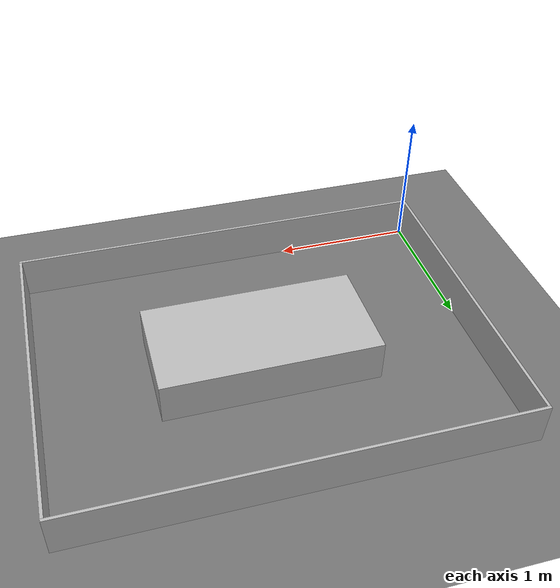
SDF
<sdf version="1.8">
 <world name="default">
  <plugin filename="gz-sim-physics-system" name="gz::sim::systems::Physics"/>
  <plugin filename="gz-sim-user-commands-system" name="gz::sim::systems::UserCommands"/>
  <plugin filename="gz-sim-scene-broadcaster-system" name="gz::sim::systems::SceneBroadcaster"/>
  <plugin filename="gz-sim-sensors-system" name="gz::sim::systems::Sensors">
   <render_engine>ogre2</render_engine>
  </plugin>
  <plugin filename="gz-sim-imu-system" name="gz::sim::systems::Imu"/>
  <scene><ambient>0.7 0.7 0.7 1</ambient><background>0.8 0.9 1.0 1</background><shadows>false</shadows></scene>
  <light type="directional" name="sun">
   <cast_shadows>false</cast_shadows>
   <pose>0 0 10 0 0 0</pose>
   <diffuse>0.6 0.6 0.6 1</diffuse>
   <specular>0 0 0 1</specular>
   <direction>-0.2 0.1 -1.0</direction>
  </light>
  <model name="ground_plane">
   <static>true</static>
   <link name="link">
    <collision name="collision">
     <geometry><plane><normal>0 0 1</normal><size>20 20</size></plane></geometry>
    </collision>
    <visual name="visual">
     <geometry><plane><normal>0 0 1</normal><size>20 20</size></plane></geometry>
     <material>
      <ambient>0.45 0.45 0.45 1</ambient>
      <diffuse>0.45 0.45 0.45 1</diffuse>
      <specular>0 0 0 1</specular>
     </material>
    </visual>
   </link>
  </model>
  <model name="wall_south">
   <static>true</static>
   <pose>1.5 -0.01 0.15 0 0 0</pose>
   <link name="link">
    <collision name="collision"><geometry><box><size>3.04 0.02 0.3</size></box></geometry></collision>
    <visual name="visual"><geometry><box><size>3.04 0.02 0.3</size></box></geometry></visual>
   </link>
  </model>
  <model name="wall_north">
   <static>true</static>
   <pose>1.5 2.26 0.15 0 0 0</pose>
   <link name="link">
    <collision name="collision"><geometry><box><size>3.04 0.02 0.3</size></box></geometry></collision>
    <visual name="visual"><geometry><box><size>3.04 0.02 0.3</size></box></geometry></visual>
   </link>
  </model>
  <model name="wall_west">
   <static>true</static>
   <pose>-0.01 1.125 0.15 0 0 0</pose>
   <link name="link">
    <collision name="collision"><geometry><box><size>0.02 2.25 0.3</size></box></geometry></collision>
    <visual name="visual"><geometry><box><size>0.02 2.25 0.3</size></box></geometry></visual>
   </link>
  </model>
  <model name="wall_east">
   <static>true</static>
   <pose>3.01 1.125 0.15 0 0 0</pose>
   <link name="link">
    <collision name="collision"><geometry><box><size>0.02 2.25 0.3</size></box></geometry></collision>
    <visual name="visual"><geometry><box><size>0.02 2.25 0.3</size></box></geometry></visual>
   </link>
  </model>
  <model name="inner_block">
   <static>true</static>
   <pose>1.5 1.125 0.15 0 0 0</pose>
   <link name="link">
    <collision name="collision"><geometry><box><size>1.5 0.75 0.3</size></box></geometry></collision>
    <visual name="visual"><geometry><box><size>1.5 0.75 0.3</size></box></geometry></visual>
   </link>
  </model>
 </world>
</sdf>
